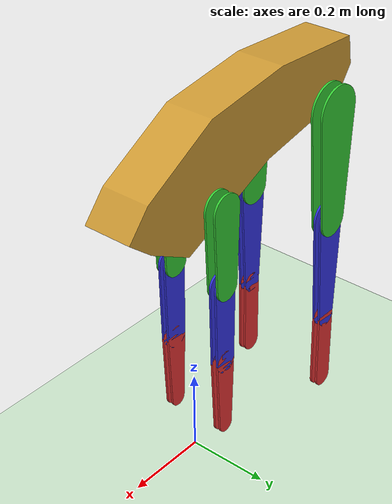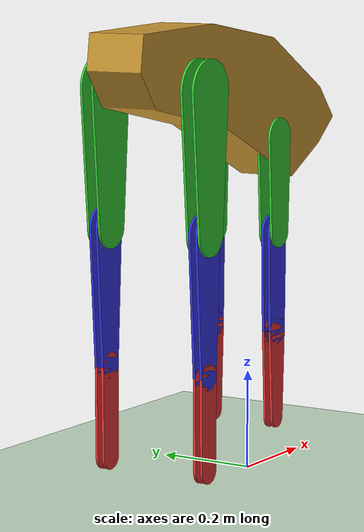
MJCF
<mujoco model="cheetah">
  <compiler angle="radian" coordinate="local" inertiafromgeom="true" settotalmass="14"/>
  <asset>
    <mesh name="torso" file="stl/torso_v2.stl" scale="0.001 0.001 0.001"/>
    <mesh name="back_left_thigh" file="stl/back_thigh_v1.stl" scale="0.001 0.001 0.001"/>
    <mesh name="back_right_thigh" file="stl/back_thigh_v1.stl" scale="0.001 -0.001 0.001"/>
    <mesh name="back_left_shin" file="stl/back_shin_v1.stl" scale="0.001 0.001 0.001"/>
    <mesh name="back_right_shin" file="stl/back_shin_v1.stl" scale="0.001 -0.001 0.001"/>
    <mesh name="back_left_foot" file="stl/back_foot_v1.stl" scale="0.001 0.001 0.001"/>
    <mesh name="back_right_foot" file="stl/back_foot_v1.stl" scale="0.001 -0.001 0.001"/>
    <mesh name="front_left_thigh" file="stl/front_thigh_v1.stl" scale="0.001 0.001 0.001"/>
    <mesh name="front_right_thigh" file="stl/front_thigh_v1.stl" scale="0.001 -0.001 0.001"/>
    <mesh name="front_left_shin" file="stl/front_shin_v1.stl" scale="0.001 0.001 0.001"/>
    <mesh name="front_right_shin" file="stl/front_shin_v1.stl" scale="0.001 -0.001 0.001"/>
    <mesh name="front_left_foot" file="stl/front_foot_v1.stl" scale="0.001 0.001 0.001"/>
    <mesh name="front_right_foot" file="stl/front_foot_v1.stl" scale="0.001 -0.001 0.001"/>
  </asset>
  <default>
    <joint axis="0 1 0" armature=".1" damping=".1" limited="true" solimplimit="0 .8 .03" solreflimit=".02 1" stiffness="20"/>
    <geom conaffinity="0" condim="3" contype="1" friction=".4 .1 .1" rgba="0.8 0.6 .4 1" solimp="0.0 0.8 0.01" solref="0.02 1"/>
    <motor ctrllimited="true" ctrlrange="-1 1"/>
  </default>
  <size nstack="300000" nuser_geom="1"/>
  <option gravity="0 0 -9.81" timestep="0.01"/>
  <asset>
    <texture builtin="gradient" height="100" rgb1="1 1 1" rgb2="0 0 0" type="skybox" width="100"/>
    <texture builtin="flat" height="1278" mark="cross" markrgb="1 1 1" name="texgeom" random="0.01" rgb1="0.8 0.6 0.4" rgb2="0.8 0.6 0.4" type="cube" width="127"/>
    <texture builtin="checker" height="100" name="texplane" rgb1="0 0 0" rgb2="0.8 0.8 0.8" type="2d" width="100"/>
    <material name="MatPlane" reflectance="0.5" shininess="1" specular="1" texrepeat="60 60" texture="texplane"/>
    <material name="geom" texture="texgeom" texuniform="true"/>
  </asset>
  <worldbody>
    <light cutoff="100" diffuse="1 1 1" dir="-0 0 -1.3" directional="true" exponent="1" pos="0 0 1.3" specular=".1 .1 .1"/>
    <geom conaffinity="1" condim="3" material="MatPlane" name="floor" pos="0 0 0" rgba="0.8 0.9 0.8 1" size="40 40 40" type="plane"/>
    <body name="torso" pos="0 0 0.682">
      <joint armature="0" axis="1 0 0" damping="0" limited="false" name="torso:x" pos="0 0 0" stiffness="0" type="slide"/>
      <joint armature="0" axis="0 1 0" damping="0" limited="false" name="torso:y" pos="0 0 0" stiffness="0" type="slide"/>
      <joint armature="0" axis="0 0 1" damping="0" limited="false" name="torso:z" pos="0 0 0" stiffness="0" type="slide"/>
      <joint armature="0" axis="0 1 0" damping="0" limited="false" name="torso:pitch" pos="0 0 0" stiffness="0" type="hinge"/>
      <joint armature="0" axis="1 0 0" damping="0" limited="false" name="torso:roll" pos="0 0 0" stiffness="0" type="hinge"/>
      <joint armature="0" axis="0 0 1" damping="0" limited="false" name="torso:yaw" pos="0 0 0" stiffness="0" type="hinge"/>
      <geom pos="0 0 0" type="mesh" mesh="torso" rgba="0.8 0.6 0.2 1"/>
      <body name="back_right_thigh" pos="-.324 -.11 .113">
        <joint name="back_right_hip" range="-.78 1.57" type="hinge"/>
        <geom pos="0 0 0" type="mesh" mesh="back_right_thigh" rgba="0.2 0.8 0.2 1"/>
        <geom pos="0 .025 0" type="mesh" mesh="back_right_thigh" rgba="0.2 0.8 0.2 1"/>
        <body name="back_right_shin" pos="0 0 -.26961">
          <joint name="back_right_knee" range="0 3.14" type="hinge"/>
          <geom pos="0 0.005 0" type="mesh" mesh="back_right_shin" rgba="0.2 0.2 0.9 1"/>
          <geom pos="0 0.020 0" type="mesh" mesh="back_right_shin" rgba="0.2 0.2 0.9 1"/>
          <body name="back_right_foot" pos="0 0 -.27104">
            <joint name="back_right_ankle" range="-.785 .785" type="hinge"/>
            <geom pos="0 0.005 0" type="mesh" mesh="back_right_foot" rgba="0.9 0.2 0.2 1"/>
            <geom pos="0 0.020 0" type="mesh" mesh="back_right_foot" rgba="0.9 0.2 0.2 1"/>
          </body>
        </body>
      </body>
      <body name="back_left_thigh" pos="-.324 .11 .113">
        <joint name="back_left_hip" range="-.78 1.57" type="hinge"/>
        <geom pos="0 0 0" type="mesh" mesh="back_left_thigh" rgba="0.2 0.8 0.2 1"/>
        <geom pos="0 .025 0" type="mesh" mesh="back_left_thigh" rgba="0.2 0.8 0.2 1"/>
        <body name="back_left_shin" pos="0 0 -.26961">
          <joint name="back_left_knee" range="0 3.14" type="hinge"/>
          <geom pos="0 0.005 0" type="mesh" mesh="back_left_shin" rgba="0.2 0.2 0.9 1"/>
          <geom pos="0 0.020 0" type="mesh" mesh="back_left_shin" rgba="0.2 0.2 0.9 1"/>
          <body name="back_left_foot" pos="0 0 -.27104">
            <joint name="back_left_ankle" range="-.785 .785" type="hinge"/>
            <geom pos="0 0.005 0" type="mesh" mesh="back_left_foot" rgba="0.9 0.2 0.2 1"/>
            <geom pos="0 0.020 0" type="mesh" mesh="back_left_foot" rgba="0.9 0.2 0.2 1"/>
          </body>
        </body>
      </body>
      <body name="front_right_thigh" pos="0 -.07 0">
        <joint name="front_right_hip" range="-.78 1.57" type="hinge"/>
        <geom pos="0 0 0" type="mesh" mesh="front_right_thigh" rgba="0.2 0.8 0.2 1"/>
        <geom pos="0 .025 0" type="mesh" mesh="front_right_thigh" rgba="0.2 0.8 0.2 1"/>
        <body name="front_right_shin" pos="0 0 -.18942">
          <joint name="front_right_knee" range="-0.78 3.14" type="hinge"/>
          <geom pos="0 0.005 0" type="mesh" mesh="front_right_shin" rgba="0.2 0.2 0.9 1"/>
          <geom pos="0 0.020 0" type="mesh" mesh="front_right_shin" rgba="0.2 0.2 0.9 1"/>
          <body name="front_right_foot" pos="0 0 -.20032">
            <joint name="front_right_ankle" range="-.785 .785" type="hinge"/>
            <geom pos="0 0.005 0" type="mesh" mesh="front_right_foot" rgba="0.9 0.2 0.2 1"/>
            <geom pos="0 0.020 0" type="mesh" mesh="front_right_foot" rgba="0.9 0.2 0.2 1"/>
          </body>
        </body>
      </body>
      <body name="front_left_thigh" pos="0 .07 0">
        <joint name="front_left_hip" range="-.78 1.57" type="hinge"/>
        <geom pos="0 0 0" type="mesh" mesh="front_left_thigh" rgba="0.2 0.8 0.2 1"/>
        <geom pos="0 .025 0" type="mesh" mesh="front_left_thigh" rgba="0.2 0.8 0.2 1"/>
        <body name="front_left_shin" pos="0 0 -.18942">
          <joint name="front_left_knee" range="-0.78 3.14" type="hinge"/>
          <geom pos="0 0.005 0" type="mesh" mesh="front_left_shin" rgba="0.2 0.2 0.9 1"/>
          <geom pos="0 0.020 0" type="mesh" mesh="front_left_shin" rgba="0.2 0.2 0.9 1"/>
          <body name="front_left_foot" pos="0 0 -.20032">
            <joint name="front_left_ankle" range="-.785 .785" type="hinge"/>
            <geom pos="0 0.005 0" type="mesh" mesh="front_left_foot" rgba="0.9 0.2 0.2 1"/>
            <geom pos="0 0.020 0" type="mesh" mesh="front_left_foot" rgba="0.9 0.2 0.2 1"/>
          </body>
        </body>
      </body>
    </body>
  </worldbody>
  <actuator>
    <motor gear="30" joint="back_left_hip" name="back_left_hip"/>
    <motor gear="20" joint="back_left_knee" name="back_left_knee"/>
    <motor gear="10" joint="back_left_ankle" name="back_left_ankle"/>
    <motor gear="30" joint="back_right_hip" name="back_right_hip"/>
    <motor gear="20" joint="back_right_knee" name="back_right_knee"/>
    <motor gear="10" joint="back_right_ankle" name="back_right_ankle"/>
    <motor gear="15" joint="front_left_hip" name="front_left_hip"/>
    <motor gear="10" joint="front_left_knee" name="front_left_knee"/>
    <motor gear="5" joint="front_left_ankle" name="front_left_ankle"/>
    <motor gear="15" joint="front_right_hip" name="front_right_hip"/>
    <motor gear="10" joint="front_right_knee" name="front_right_knee"/>
    <motor gear="5" joint="front_right_ankle" name="front_right_ankle"/>
  </actuator>
</mujoco>
